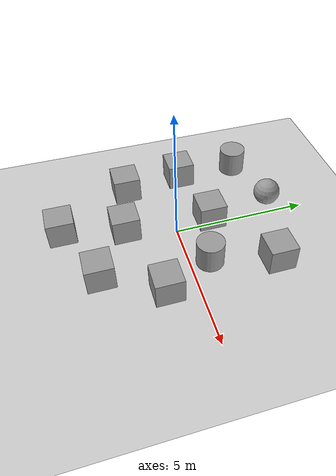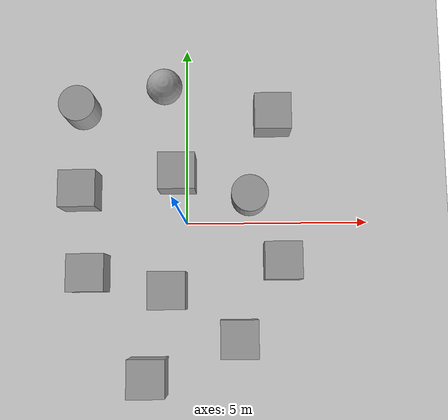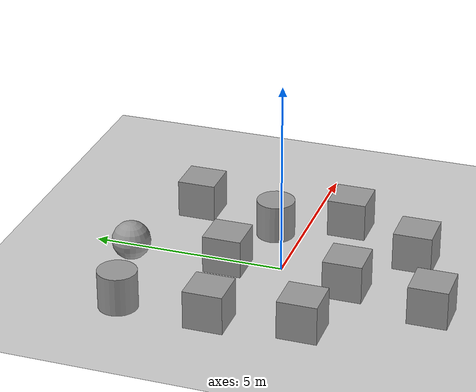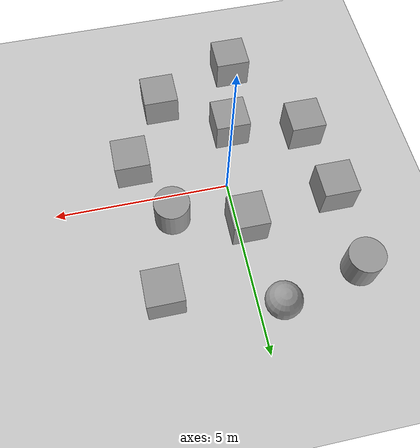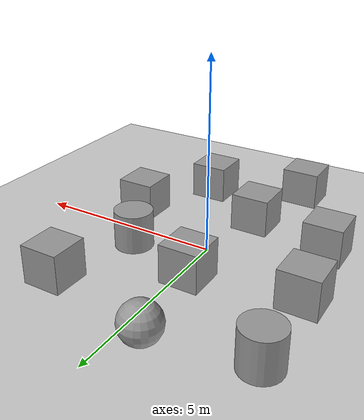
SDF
<sdf version="1.7">
 <world name="default">
  <light name="sun" type="directional">
   <pose>0 0 10 0 -0 0</pose>
   <diffuse>0.8 0.8 0.8 1</diffuse>
   <specular>0.2 0.2 0.2 1</specular>
   <attenuation>
    <range>1000</range>
    <constant>0.9</constant>
    <linear>0.01</linear>
    <quadratic>0.001</quadratic>
   </attenuation>
   <direction>-0.5 0.1 -0.9</direction>
   <spot><inner_angle>0</inner_angle><outer_angle>0</outer_angle><falloff>0</falloff></spot>
  </light>
  <model name="ground_plane">
   <static>1</static>
   <link name="link">
    <collision name="collision">
     <geometry><plane><normal>0 0 1</normal><size>100 100</size></plane></geometry>
     <surface>
      <contact><collide_bitmask>65535</collide_bitmask></contact>
      <friction><ode><mu>100</mu><mu2>50</mu2></ode></friction>
     </surface>
    </collision>
    <visual name="visual">
     <cast_shadows>0</cast_shadows>
     <geometry><plane><normal>0 0 1</normal><size>100 100</size></plane></geometry>
     <material>
      <script><uri>file://media/materials/scripts/gazebo.material</uri><name>Gazebo/Grey</name></script>
     </material>
    </visual>
   </link>
  </model>
  <gravity>0 0 -9.8</gravity>
  <magnetic_field>6e-06 2.3e-05 -4.2e-05</magnetic_field>
  <atmosphere type="adiabatic"/>
  <physics type="ode">
   <max_step_size>0.001</max_step_size>
   <real_time_factor>1</real_time_factor>
   <real_time_update_rate>1000</real_time_update_rate>
  </physics>
  <scene><ambient>0.4 0.4 0.4 1</ambient><background>0.7 0.7 0.7 1</background><shadows>1</shadows></scene>
  <audio><device>default</device></audio>
  <spherical_coordinates>
   <surface_model>EARTH_WGS84</surface_model>
   <latitude_deg>0</latitude_deg>
   <longitude_deg>0</longitude_deg>
   <elevation>0</elevation>
   <heading_deg>0</heading_deg>
  </spherical_coordinates>
  <model name="unit_box">
   <pose>-0.237884 1.34356 0.5 0 -0 0</pose>
   <link name="link">
    <inertial>
     <mass>1</mass>
     <inertia>
      <ixx>0.166667</ixx>
      <ixy>0</ixy>
      <ixz>0</ixz>
      <iyy>0.166667</iyy>
      <iyz>0</iyz>
      <izz>0.166667</izz>
     </inertia>
    </inertial>
    <collision name="collision"><geometry><box><size>1 1 1</size></box></geometry></collision>
    <visual name="visual">
     <geometry><box><size>1 1 1</size></box></geometry>
     <material>
      <script><name>Gazebo/Grey</name><uri>file://media/materials/scripts/gazebo.material</uri></script>
     </material>
    </visual>
   </link>
  </model>
  <model name="unit_cylinder">
   <pose>1.73736 0.70892 0.499998 3e-06 -3e-06 0</pose>
   <link name="link">
    <inertial>
     <mass>1</mass>
     <inertia><ixx>0.145833</ixx><ixy>0</ixy><ixz>0</ixz><iyy>0.145833</iyy><iyz>0</iyz><izz>0.125</izz></inertia>
    </inertial>
    <collision name="collision">
     <geometry><cylinder><radius>0.5</radius><length>1</length></cylinder></geometry>
    </collision>
    <visual name="visual">
     <geometry><cylinder><radius>0.5</radius><length>1</length></cylinder></geometry>
     <material>
      <script><name>Gazebo/Grey</name><uri>file://media/materials/scripts/gazebo.material</uri></script>
     </material>
    </visual>
   </link>
  </model>
  <model name="unit_box_0">
   <pose>-0.488111 -1.84688 0.5 0 -0 0</pose>
   <link name="link">
    <inertial>
     <mass>1</mass>
     <inertia>
      <ixx>0.166667</ixx>
      <ixy>0</ixy>
      <ixz>0</ixz>
      <iyy>0.166667</iyy>
      <iyz>0</iyz>
      <izz>0.166667</izz>
     </inertia>
    </inertial>
    <collision name="collision"><geometry><box><size>1 1 1</size></box></geometry></collision>
    <visual name="visual">
     <geometry><box><size>1 1 1</size></box></geometry>
     <material>
      <script><name>Gazebo/Grey</name><uri>file://media/materials/scripts/gazebo.material</uri></script>
     </material>
    </visual>
   </link>
  </model>
  <model name="unit_box_1">
   <pose>-2.62475 -1.36176 0.5 -0 -0 -0</pose>
   <link name="link">
    <inertial>
     <mass>1</mass>
     <inertia>
      <ixx>0.166667</ixx>
      <ixy>0</ixy>
      <ixz>0</ixz>
      <iyy>0.166667</iyy>
      <iyz>0</iyz>
      <izz>0.166667</izz>
     </inertia>
    </inertial>
    <collision name="collision"><geometry><box><size>1 1 1</size></box></geometry></collision>
    <visual name="visual">
     <geometry><box><size>1 1 1</size></box></geometry>
     <material>
      <script><name>Gazebo/Grey</name><uri>file://media/materials/scripts/gazebo.material</uri></script>
     </material>
    </visual>
   </link>
  </model>
  <model name="unit_box_2">
   <pose>-2.89565 0.884301 0.5 0 -0 0</pose>
   <link name="link">
    <inertial>
     <mass>1</mass>
     <inertia>
      <ixx>0.166667</ixx>
      <ixy>0</ixy>
      <ixz>0</ixz>
      <iyy>0.166667</iyy>
      <iyz>0</iyz>
      <izz>0.166667</izz>
     </inertia>
    </inertial>
    <collision name="collision"><geometry><box><size>1 1 1</size></box></geometry></collision>
    <visual name="visual">
     <geometry><box><size>1 1 1</size></box></geometry>
     <material>
      <script><name>Gazebo/Grey</name><uri>file://media/materials/scripts/gazebo.material</uri></script>
     </material>
    </visual>
   </link>
  </model>
  <model name="unit_box_3">
   <pose>2.38722 2.96614 0.5 -0 -0 -0</pose>
   <link name="link">
    <inertial>
     <mass>1</mass>
     <inertia>
      <ixx>0.166667</ixx>
      <ixy>0</ixy>
      <ixz>0</ixz>
      <iyy>0.166667</iyy>
      <iyz>0</iyz>
      <izz>0.166667</izz>
     </inertia>
    </inertial>
    <collision name="collision"><geometry><box><size>1 1 1</size></box></geometry></collision>
    <visual name="visual">
     <geometry><box><size>1 1 1</size></box></geometry>
     <material>
      <script><name>Gazebo/Grey</name><uri>file://media/materials/scripts/gazebo.material</uri></script>
     </material>
    </visual>
   </link>
  </model>
  <model name="unit_box_4">
   <pose>2.60656 -1.08225 0.5 0 -0 0</pose>
   <link name="link">
    <inertial>
     <mass>1</mass>
     <inertia>
      <ixx>0.166667</ixx>
      <ixy>0</ixy>
      <ixz>0</ixz>
      <iyy>0.166667</iyy>
      <iyz>0</iyz>
      <izz>0.166667</izz>
     </inertia>
    </inertial>
    <collision name="collision"><geometry><box><size>1 1 1</size></box></geometry></collision>
    <visual name="visual">
     <geometry><box><size>1 1 1</size></box></geometry>
     <material>
      <script><name>Gazebo/Grey</name><uri>file://media/materials/scripts/gazebo.material</uri></script>
     </material>
    </visual>
   </link>
  </model>
  <model name="unit_box_5">
   <pose>1.42492 -3.12486 0.5 -0 -0 -0</pose>
   <link name="link">
    <inertial>
     <mass>1</mass>
     <inertia>
      <ixx>0.166667</ixx>
      <ixy>0</ixy>
      <ixz>0</ixz>
      <iyy>0.166667</iyy>
      <iyz>0</iyz>
      <izz>0.166667</izz>
     </inertia>
    </inertial>
    <collision name="collision"><geometry><box><size>1 1 1</size></box></geometry></collision>
    <visual name="visual">
     <geometry><box><size>1 1 1</size></box></geometry>
     <material>
      <script><name>Gazebo/Grey</name><uri>file://media/materials/scripts/gazebo.material</uri></script>
     </material>
    </visual>
   </link>
  </model>
  <model name="unit_box_6">
   <pose>-1.00786 -4.10357 0.5 0 -0 0</pose>
   <link name="link">
    <inertial>
     <mass>1</mass>
     <inertia>
      <ixx>0.166667</ixx>
      <ixy>0</ixy>
      <ixz>0</ixz>
      <iyy>0.166667</iyy>
      <iyz>0</iyz>
      <izz>0.166667</izz>
     </inertia>
    </inertial>
    <collision name="collision"><geometry><box><size>1 1 1</size></box></geometry></collision>
    <visual name="visual">
     <geometry><box><size>1 1 1</size></box></geometry>
     <material>
      <script><name>Gazebo/Grey</name><uri>file://media/materials/scripts/gazebo.material</uri></script>
     </material>
    </visual>
   </link>
  </model>
  <model name="unit_sphere">
   <pose>-0.60412 3.80629 0.5 0 -0 0</pose>
   <link name="link">
    <inertial>
     <mass>1</mass>
     <inertia><ixx>0.1</ixx><ixy>0</ixy><ixz>0</ixz><iyy>0.1</iyy><iyz>0</iyz><izz>0.1</izz></inertia>
    </inertial>
    <collision name="collision"><geometry><sphere><radius>0.5</radius></sphere></geometry></collision>
    <visual name="visual">
     <geometry><sphere><radius>0.5</radius></sphere></geometry>
     <material>
      <script><name>Gazebo/Grey</name><uri>file://media/materials/scripts/gazebo.material</uri></script>
     </material>
    </visual>
   </link>
  </model>
  <model name="unit_cylinder_0">
   <pose>-2.9381 3.22033 0.499993 -3e-06 -4e-06 -0</pose>
   <link name="link">
    <inertial>
     <mass>1</mass>
     <inertia><ixx>0.145833</ixx><ixy>0</ixy><ixz>0</ixz><iyy>0.145833</iyy><iyz>0</iyz><izz>0.125</izz></inertia>
    </inertial>
    <collision name="collision">
     <geometry><cylinder><radius>0.5</radius><length>1</length></cylinder></geometry>
    </collision>
    <visual name="visual">
     <geometry><cylinder><radius>0.5</radius><length>1</length></cylinder></geometry>
     <material>
      <script><name>Gazebo/Grey</name><uri>file://media/materials/scripts/gazebo.material</uri></script>
     </material>
    </visual>
   </link>
  </model>
 </world>
</sdf>
